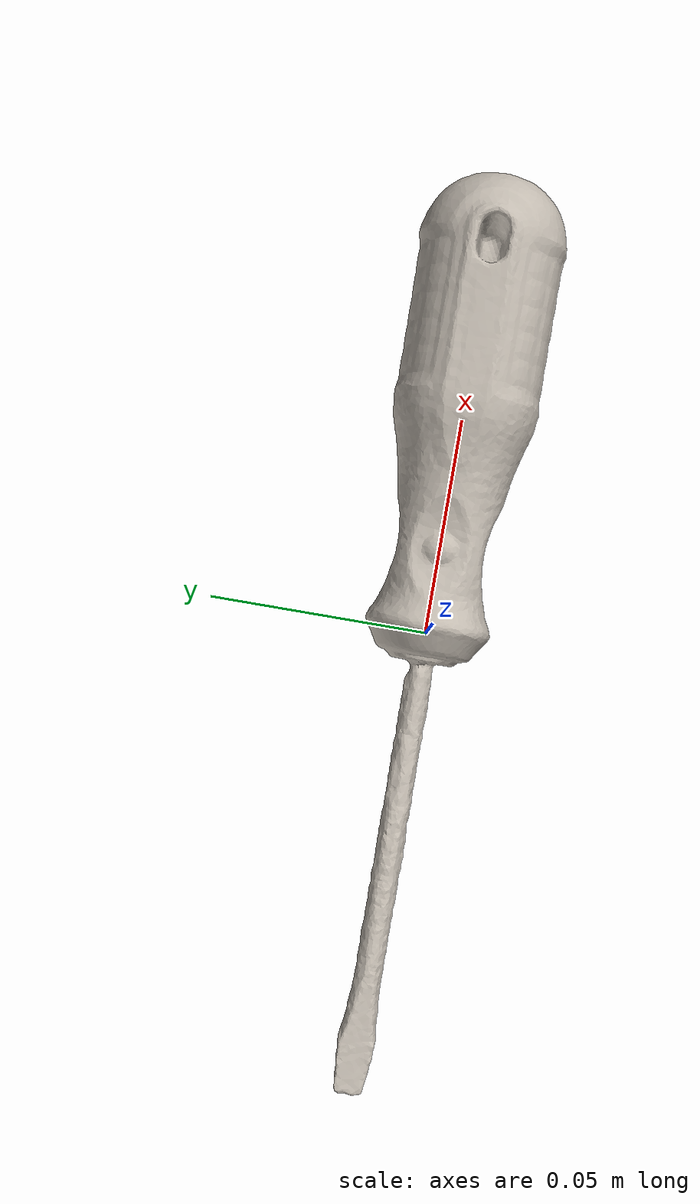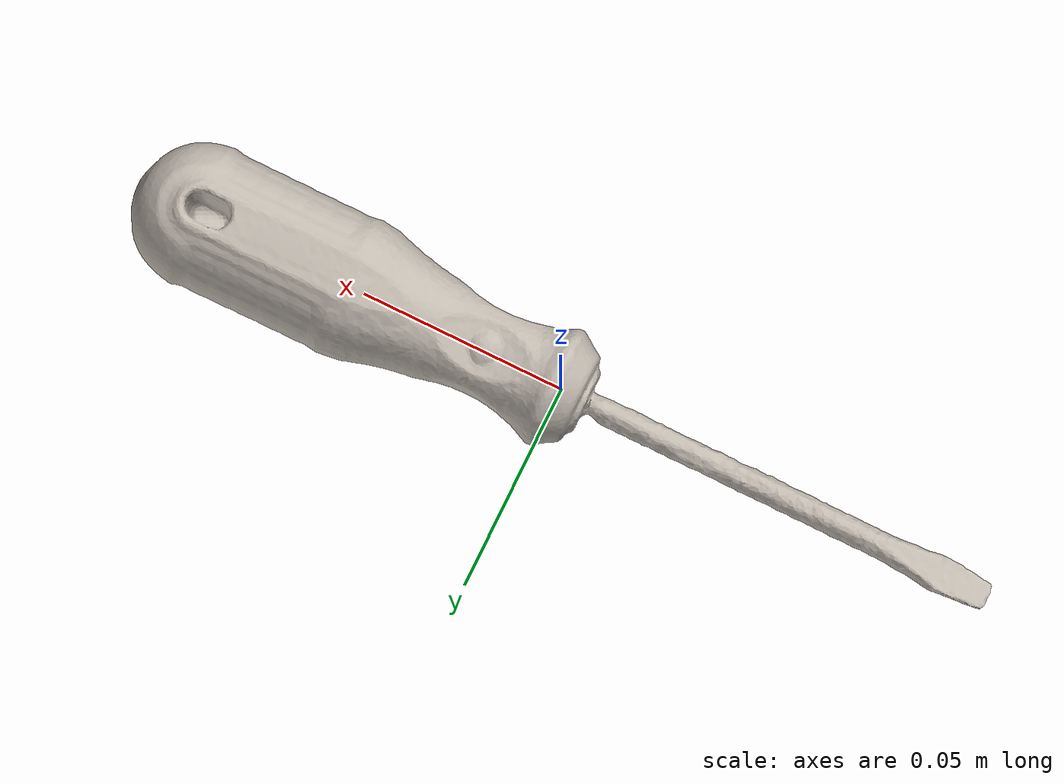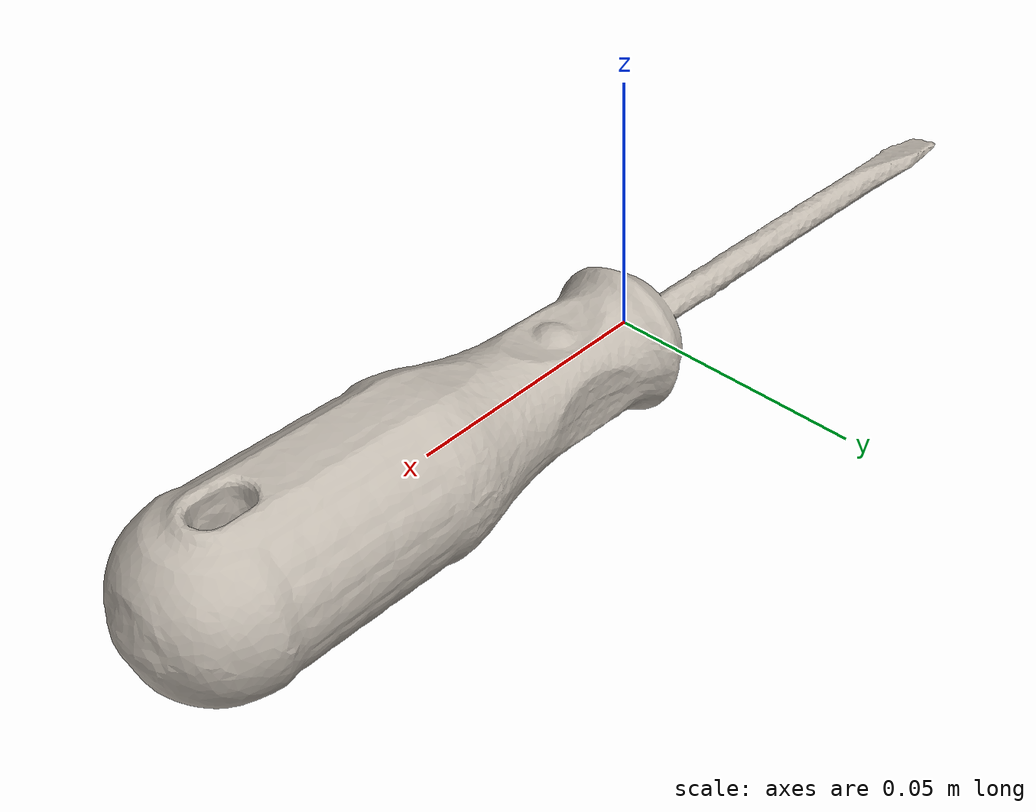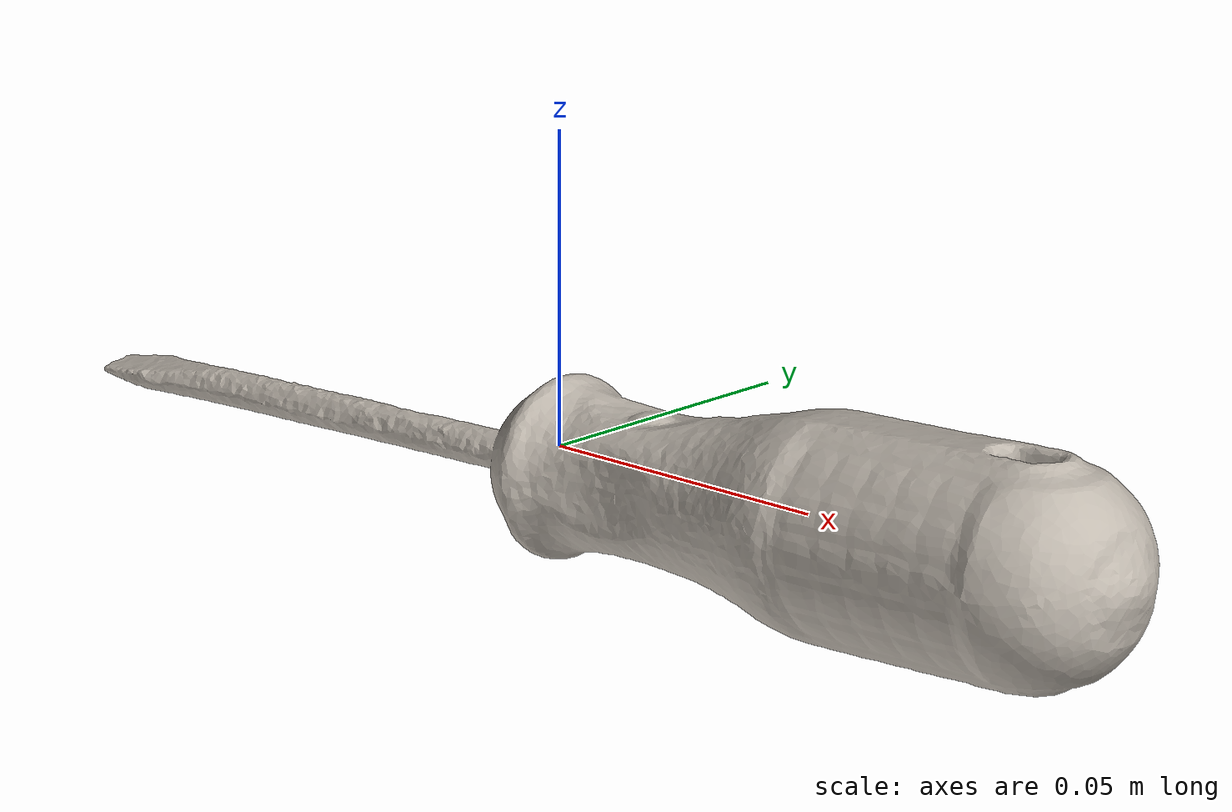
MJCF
<mujoco model="flat_screwdriver">
  <default>
    <default class="visual">
      <geom group="1" type="mesh" contype="0" conaffinity="0"/>
    </default>
    <default class="collision">
      <geom group="0" type="mesh"/>
    </default>
  </default>
  <asset>
    <texture type="2d" name="flat_screwdriver" file="flat_screwdriver.png"/>
    <material name="flat_screwdriver" texture="flat_screwdriver" specular="0.4000000000000001" shininess="0.001"/>
    <mesh name="flat_screwdriver" file="flat_screwdriver.obj"/>
  </asset>
  <worldbody>
    <body>
    <body name="object">
      <geom material="flat_screwdriver" mesh="flat_screwdriver" class="visual"/>
      <geom mesh="flat_screwdriver" class="collision"/>
    </body>
      <site rgba="0 0 0 0" size="0.005" pos="0 0 -0.04" name="bottom_site" />
      <site rgba="0 0 0 0" size="0.005" pos="0 0 0.04" name="top_site" />
      <site rgba="0 0 0 0" size="0.005" pos="0.005 0.005 0" name="horizontal_radius_site" />
   </body>
  </worldbody>
</mujoco>
